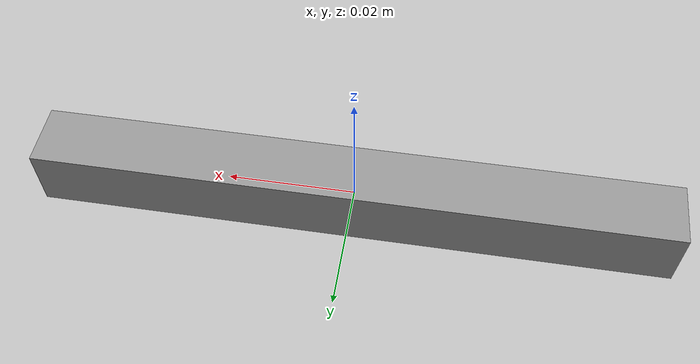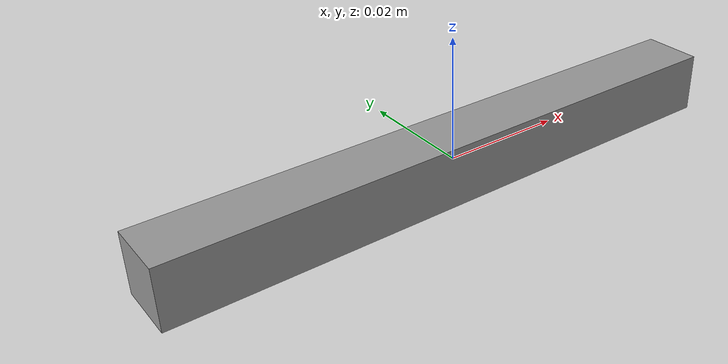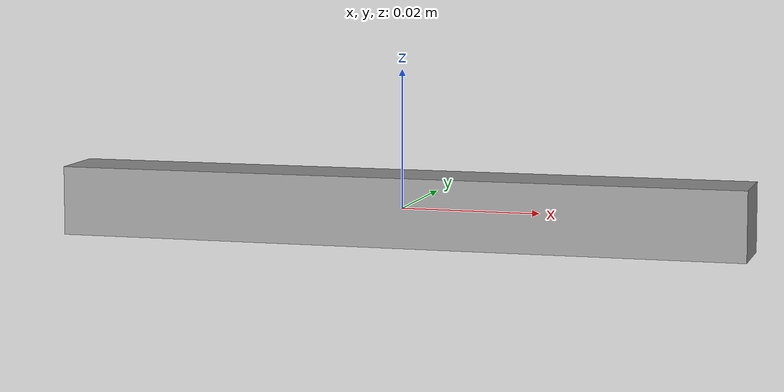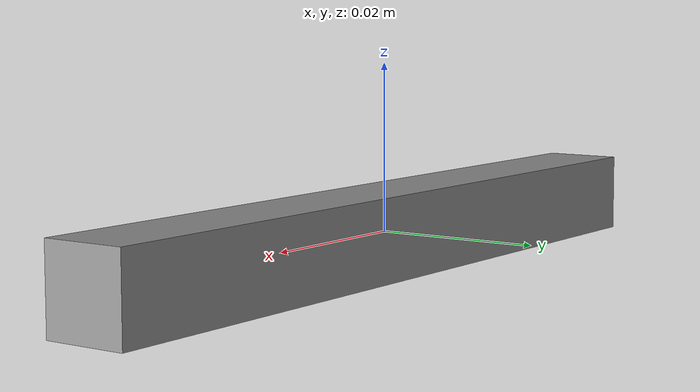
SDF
<?xml version='1.0'?>
<sdf version='1.6'>
  <model name='cube'>
    <link name='link_0'>
      <pose frame=''>0 0 0 0 -0 0</pose>
      <inertial>
        <mass>0.00018394</mass>
        <inertia>
          <ixx>8e-08</ixx>
          <ixy>0</ixy>
          <ixz>0</ixz>
          <iyy>1.1e-07</iyy>
          <iyz>0</iyz>
          <izz>1.1e-07</izz>
        </inertia>
        <pose frame=''>0 0 0 0 -0 0</pose>
      </inertial>
      <self_collide>0</self_collide>
      <kinematic>0</kinematic>
      <gravity>1</gravity>
      <visual name='visual'>
        <pose frame=''>0 0 0 0 -0 0</pose>
        <geometry>
          <box>
            <size>0.1 0.01 0.01</size>
          </box>
        </geometry>
        <material>
          <lighting>1</lighting>
          <script>
            <uri>file://media/materials/scripts/gazebo.material</uri>
            <name>Gazebo/Grey</name>
          </script>
          <shader type='pixel'>
            <normal_map>__default__</normal_map>
          </shader>
          <ambient>0.3 0.3 0.3 1</ambient>
          <diffuse>0.7 0.7 0.7 1</diffuse>
          <specular>0.01 0.01 0.01 1</specular>
          <emissive>0 0 0 1</emissive>
        </material>
        <transparency>0</transparency>
        <cast_shadows>1</cast_shadows>
      </visual>
      <collision name='collision'>
        <laser_retro>0</laser_retro>
        <max_contacts>10</max_contacts>
        <pose frame=''>0 0 0 0 -0 0</pose>
        <geometry>
          <box>
            <size>0.1 0.01 0.01</size>
          </box>
        </geometry>
        <surface>
          <friction>
            <ode>
              <mu>100</mu>
              <mu2>500</mu2>
              <fdir1>0 0 0</fdir1>
              <slip1>0</slip1>
              <slip2>0</slip2>
            </ode>
            <torsional>
              <coefficient>1</coefficient>
              <patch_radius>0</patch_radius>
              <surface_radius>0</surface_radius>
              <use_patch_radius>1</use_patch_radius>
              <ode>
                <slip>0</slip>
              </ode>
            </torsional>
          </friction>
          <bounce>
            <restitution_coefficient>0</restitution_coefficient>
            <threshold>1e+06</threshold>
          </bounce>
          <contact>
            <collide_without_contact>0</collide_without_contact>
            <collide_without_contact_bitmask>1</collide_without_contact_bitmask>
            <collide_bitmask>1</collide_bitmask>
            <ode>
              <soft_cfm>0.05</soft_cfm>
              <soft_erp>0.05</soft_erp>
              <kp>1e+13</kp>
              <kd>1</kd>
              <max_vel>0.01</max_vel>
              <min_depth>0</min_depth>
            </ode>
            <bullet>
              <split_impulse>1</split_impulse>
              <split_impulse_penetration_threshold>-0.01</split_impulse_penetration_threshold>
              <soft_cfm>0.05</soft_cfm>
              <soft_erp>0.05</soft_erp>
              <kp>1e+13</kp>
              <kd>1</kd>
            </bullet>
          </contact>
        </surface>
      </collision>
    </link>
    <static>0</static>
    <allow_auto_disable>1</allow_auto_disable>
  </model>
</sdf>
